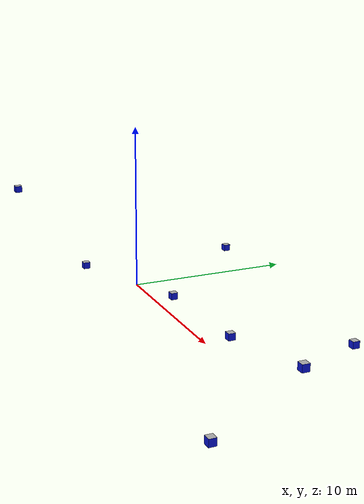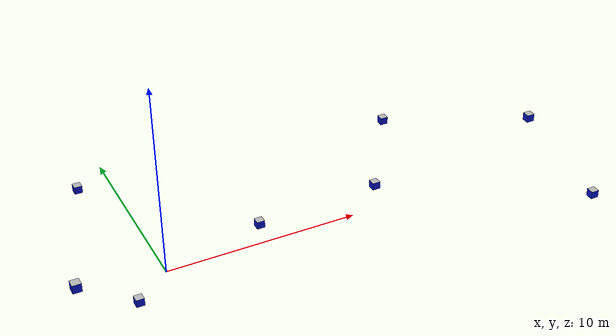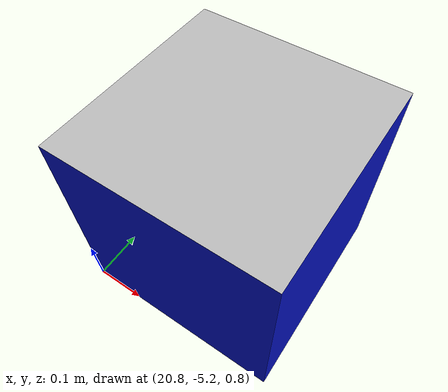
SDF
<sdf version="1.7">
 <world name="demo">
  <plugin filename="ignition-gazebo-physics-system" name="ignition::gazebo::systems::Physics"/>
  <plugin filename="gz-sim-user-commands-system" name="gz::sim::systems::UserCommands"/>
  <plugin filename="ignition-gazebo-sensors-system" name="ignition::gazebo::systems::Sensors">
   <render_engine>ogre2</render_engine>
  </plugin>
  <plugin filename="gz-sim-scene-broadcaster-system" name="gz::sim::systems::SceneBroadcaster"/>
  <plugin filename="ignition-gazebo-contact-system" name="ignition::gazebo::systems::Contact"/>
  <physics name="1ms" type="ignored">
   <max_step_size>0.001</max_step_size>
   <real_time_factor>1.0</real_time_factor>
  </physics>
  <plugin filename="ignition-gazebo-user-commands-system" name="ignition::gazebo::systems::UserCommands"/>
  <scene>
   <ambient>1 1 1 1</ambient>
   <background>0.3 0.7 0.9 1</background>
   <shadows>0</shadows>
   <grid>1</grid>
  </scene>
  <model name="ground_plane">
   <static>1</static>
   <link name="link">
    <collision name="collision">
     <geometry><plane><normal>0 0 1</normal><size>1 1</size></plane></geometry>
    </collision>
   </link>
  </model>
  <model name="depot_collision">
   <static>1</static>
   <pose>7.19009 1.09982 0 0 0 0</pose>
   <link name="collision_link">
    <collision name="wall1">
     <pose>0 -7.6129 4.5 0 0 0</pose>
     <geometry><box><size>30.167 0.08 9</size></box></geometry>
    </collision>
    <collision name="wall2">
     <pose>0 7.2875 4.5 0 0 0</pose>
     <geometry><box><size>30.167 0.08 9</size></box></geometry>
    </collision>
    <collision name="wall3">
     <pose>-15 0 4.5 0 0 0</pose>
     <geometry><box><size>0.08 15.360 9</size></box></geometry>
    </collision>
    <collision name="wall4">
     <pose>15 0 4.5 0 0 0</pose>
     <geometry><box><size>0.08 15.360 9</size></box></geometry>
    </collision>
    <collision name="boxes1">
     <pose>0.22268 -4.7268 0.68506 0 0 0</pose>
     <geometry><box><size>1.288 1.422 1.288</size></box></geometry>
    </collision>
    <collision name="boxes2">
     <pose>3.1727 -4.7268 0.68506 0 0 0</pose>
     <geometry><box><size>1.288 1.422 1.288</size></box></geometry>
    </collision>
    <collision name="boxes3">
     <pose>5.95268 -4.7268 0.68506 0 0 0</pose>
     <geometry><box><size>1.288 1.422 1.288</size></box></geometry>
    </collision>
    <collision name="boxes4">
     <pose>8.55887 -4.7268 0.68506 0 0 0</pose>
     <geometry><box><size>1.288 1.422 1.288</size></box></geometry>
    </collision>
    <collision name="boxes5">
     <pose>11.326 -4.7268 0.68506 0 0 0</pose>
     <geometry><box><size>1.288 1.422 1.288</size></box></geometry>
    </collision>
    <collision name="boxes6">
     <pose>0.22268 -2.37448 0.68506 0 0 0</pose>
     <geometry><box><size>1.288 1.422 1.288</size></box></geometry>
    </collision>
    <collision name="boxes7">
     <pose>3.1727 -2.37448 0.68506 0 0 0</pose>
     <geometry><box><size>1.288 1.422 1.288</size></box></geometry>
    </collision>
    <collision name="boxes8">
     <pose>5.95268 -2.37448 0.68506 0 0 0</pose>
     <geometry><box><size>1.288 1.422 1.288</size></box></geometry>
    </collision>
    <collision name="boxes9">
     <pose>8.55887 -2.37448 0.68506 0 0 0</pose>
     <geometry><box><size>1.288 1.422 1.288</size></box></geometry>
    </collision>
    <collision name="boxes10">
     <pose>11.326 -2.37448 0.68506 0 0 0</pose>
     <geometry><box><size>1.288 1.422 1.288</size></box></geometry>
    </collision>
    <collision name="boxes11">
     <pose>-1.2268 4.1557 0.68506 0 0 -1.02799893</pose>
     <geometry><box><size>1.288 1.422 1.288</size></box></geometry>
    </collision>
    <collision name="pallet_mover1">
     <pose>-0.6144 -2.389 0.41838 0 0 0</pose>
     <geometry><box><size>0.363 0.440 0.719</size></box></geometry>
    </collision>
    <collision name="pallet_mover2">
     <pose>-1.6004 4.8225 0.41838 0 0 0</pose>
     <geometry><box><size>0.363 0.244 0.719</size></box></geometry>
    </collision>
    <collision name="stairs">
     <pose>13.018 3.1652 0.25 0 0 0</pose>
     <geometry><box><size>1.299 0.6 0.5</size></box></geometry>
    </collision>
    <collision name="shelfs1">
     <pose>1.4662 -0.017559 0.5 0 0 0</pose>
     <geometry><cylinder><radius>0.03</radius><length>1</length></cylinder></geometry>
    </collision>
    <collision name="shelfs2">
     <pose>2.6483 -0.017559 0.5 0 0 0</pose>
     <geometry><cylinder><radius>0.03</radius><length>1</length></cylinder></geometry>
    </collision>
    <collision name="shelfs3">
     <pose>5.3247 -0.017559 0.5 0 0 0</pose>
     <geometry><cylinder><radius>0.03</radius><length>1</length></cylinder></geometry>
    </collision>
    <collision name="shelfs4">
     <pose>6.5063 -0.017559 0.5 0 0 0</pose>
     <geometry><cylinder><radius>0.03</radius><length>1</length></cylinder></geometry>
    </collision>
    <collision name="shelfs5">
     <pose>9.0758 -0.017559 0.5 0 0 0</pose>
     <geometry><cylinder><radius>0.03</radius><length>1</length></cylinder></geometry>
    </collision>
    <collision name="shelfs6">
     <pose>10.258 -0.017559 0.5 0 0 0</pose>
     <geometry><cylinder><radius>0.03</radius><length>1</length></cylinder></geometry>
    </collision>
    <collision name="shelfs7">
     <pose>1.4662 2.5664 0.5 0 0 0</pose>
     <geometry><cylinder><radius>0.03</radius><length>1</length></cylinder></geometry>
    </collision>
    <collision name="shelfs8">
     <pose>2.6483 2.5664 0.5 0 0 0</pose>
     <geometry><cylinder><radius>0.03</radius><length>1</length></cylinder></geometry>
    </collision>
    <collision name="shelfs9">
     <pose>5.3247 2.5664 0.5 0 0 0</pose>
     <geometry><cylinder><radius>0.03</radius><length>1</length></cylinder></geometry>
    </collision>
    <collision name="shelfs10">
     <pose>6.5063 2.5664 0.5 0 0 0</pose>
     <geometry><cylinder><radius>0.03</radius><length>1</length></cylinder></geometry>
    </collision>
    <collision name="shelfs11">
     <pose>9.0758 2.5664 0.5 0 0 0</pose>
     <geometry><cylinder><radius>0.03</radius><length>1</length></cylinder></geometry>
    </collision>
    <collision name="shelfs12">
     <pose>10.258 2.5664 0.5 0 0 0</pose>
     <geometry><cylinder><radius>0.03</radius><length>1</length></cylinder></geometry>
    </collision>
    <collision name="shelfs13">
     <pose>1.4662 5.1497 0.5 0 0 0</pose>
     <geometry><cylinder><radius>0.03</radius><length>1</length></cylinder></geometry>
    </collision>
    <collision name="shelfs14">
     <pose>2.6483 5.1497 0.5 0 0 0</pose>
     <geometry><cylinder><radius>0.03</radius><length>1</length></cylinder></geometry>
    </collision>
    <collision name="shelfs15">
     <pose>5.3247 5.1497 0.5 0 0 0</pose>
     <geometry><cylinder><radius>0.03</radius><length>1</length></cylinder></geometry>
    </collision>
    <collision name="shelfs16">
     <pose>6.5063 5.1497 0.5 0 0 0</pose>
     <geometry><cylinder><radius>0.03</radius><length>1</length></cylinder></geometry>
    </collision>
    <collision name="shelfs17">
     <pose>9.0758 5.1497 0.5 0 0 0</pose>
     <geometry><cylinder><radius>0.03</radius><length>1</length></cylinder></geometry>
    </collision>
    <collision name="shelfs18">
     <pose>10.258 5.1497 0.5 0 0 0</pose>
     <geometry><cylinder><radius>0.03</radius><length>1</length></cylinder></geometry>
    </collision>
   </link>
  </model>
  <include><uri>model://Box</uri><pose>21.0 -5.0 1.0 0 0 0</pose><name>Box</name></include>
  <include><uri>model://Box</uri><pose>15.0 6.0 1.0 0 0 0</pose><name>Box1</name></include>
  <include><uri>model://Box</uri><pose>5.0 0.3 1.0 0 0 0</pose><name>Box2</name></include>
  <include><uri>model://Box</uri><pose>-2.0 7.2 1.0 0 0 0</pose><name>Box3</name></include>
  <include><uri>model://Box</uri><pose>-2.2 -2.6 1.0 0 0 0</pose><name>Box4</name></include>
  <include><uri>model://Box</uri><pose>-5.6 -5.9 5.5 0 0 0</pose><name>Box5</name></include>
  <include><uri>model://Box</uri><pose>20.2 -0.2 3.1 0 0 0</pose><name>Box6</name></include>
  <include><uri>model://Box</uri><pose>11.59 0.67 1.0 0 0 0</pose><name>Box7</name></include>
 </world>
</sdf>

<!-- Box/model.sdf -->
<sdf version="1.8">

<model name="Terror">
      <link name="box_link">
        <inertial>
          <inertia>
            <ixx>0.16666</ixx>
            <ixy>0</ixy>
            <ixz>0</ixz>
            <iyy>0.16666</iyy>
            <iyz>0</iyz>
            <izz>0.16666</izz>
          </inertia>
          <mass>1.0</mass>
        </inertial>
        <collision name="box_collision">
          <geometry>
            <box>
              <size>0.2 0.2 0.2</size>
            </box>
          </geometry>
        </collision>

        <visual name="box_visual1">
          <geometry>
            <mesh>
              <scale> 0.2 0.2 0.2 </scale>
              <uri>model://Box/meshes/Terror.dae</uri>
            </mesh>
          </geometry>
        </visual>
      </link>
    </model>

  </sdf>
